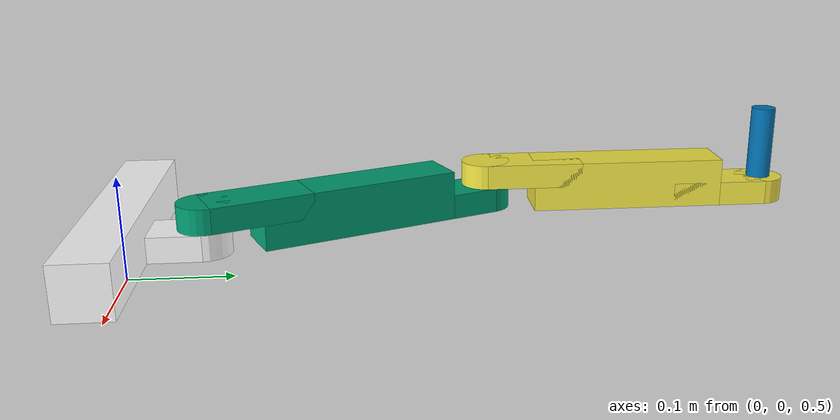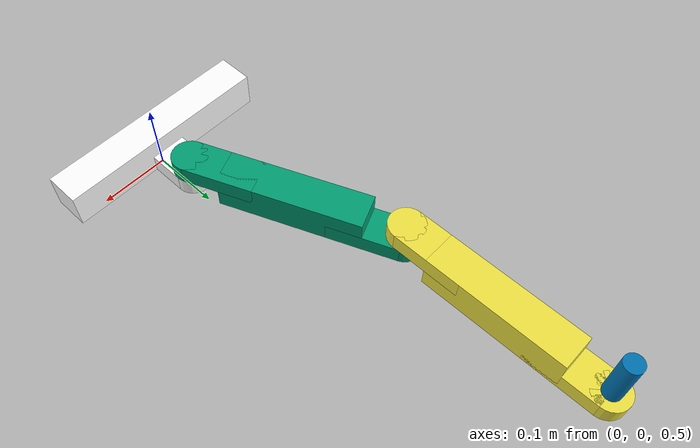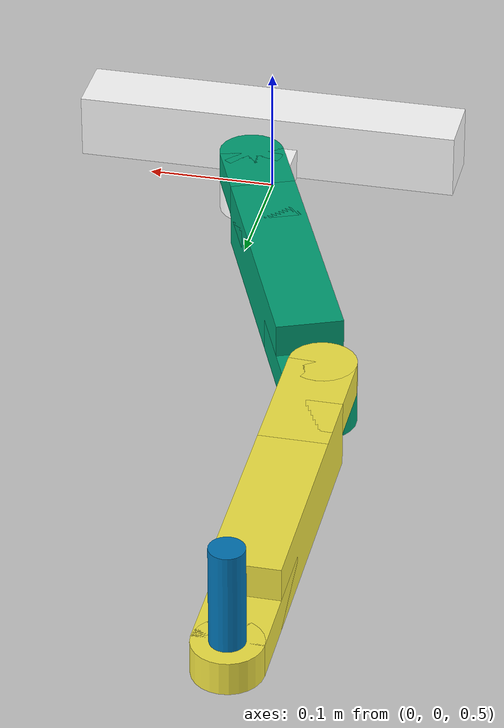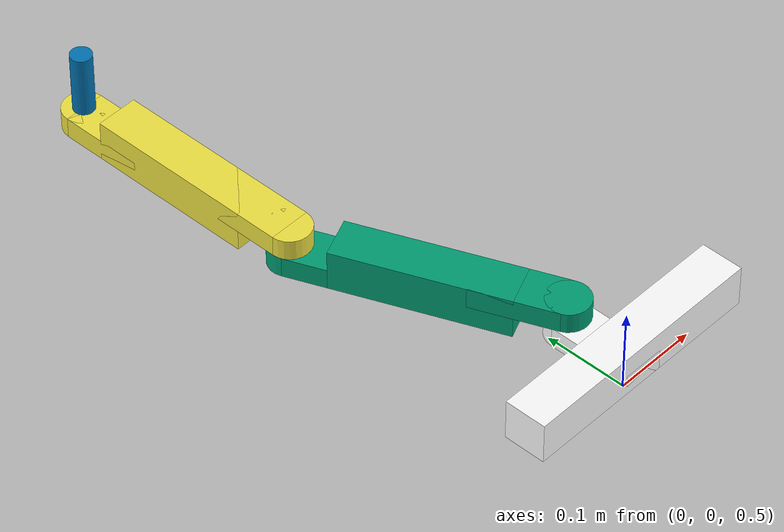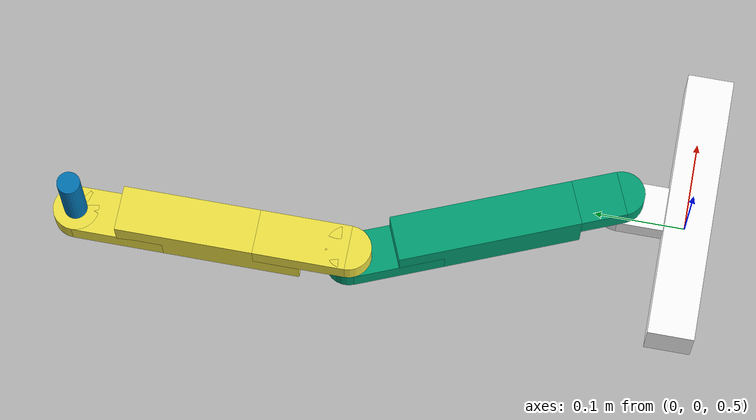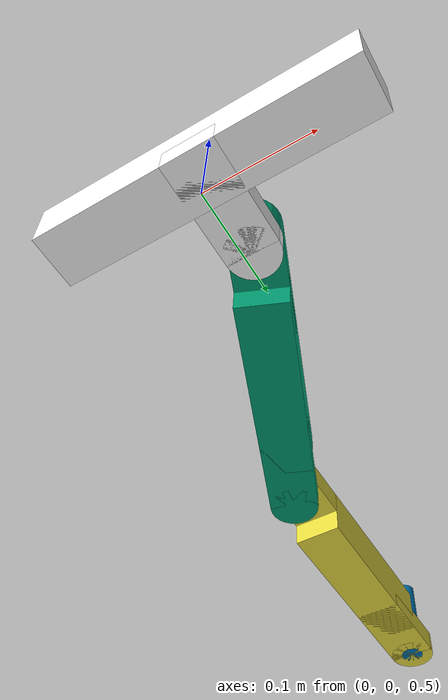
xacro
<?xml version="1.0"?>
<robot xmlns:xacro="http://www.ros.org/wiki/xacro" name="2r_manipulator_scaled_down">
  <!-- |    Author: Yeshasvi Tirupachuri                                                 | -->
  <!-- |    Date: 22 JULY 2016                                                           | -->
  <!-- |    Email: Yeshasvi.Tirupachuri@iit.it                                           | -->
  <!-- |    Institute: RBCS Department, Italian Institute of Technology, Genova          | -->
  <!-- |    Description: Xacro file for 2R Manipulator                                   | -->
  <!-- |    for URDF: rosrun xacro xacro model.xacro > model.urdf                        | -->
  <!-- |    for SDF: gz sdf -p model.urdf > model.sdf                                    | -->

<!--XACRO: Axis Rotation - 180 Degree/ Pi Radians-->
<xacro:property name="angle" value="3.14"/>

<!--XACRO: Small Rectangle-->
<xacro:property name="length_small_box" value="0.05"/>
<xacro:property name="width_small_box" value="${length_small_box*2}"/>
<xacro:property name="height_small_box" value="${length_small_box/2}"/>

<!--XACRO: Small Cylinder-->
<xacro:property name="length_small_cylinder" value="${height_small_box}"/>
<xacro:property name="radius_small_cylinder" value="${length_small_box/2}"/>

<!--XACRO: Base Rectangle-->
<xacro:property name="length_base_box" value="0.3"/>
<xacro:property name="width_base_box" value="0.05"/>
<xacro:property name="height_base_box" value="0.05"/>

<!--XACRO: First Link Rectangle-->
<xacro:property name="length_link1_box" value="0.05"/>
<xacro:property name="width_link1_box" value="0.2"/>
<xacro:property name="height_link1_box" value="0.05"/>

<!--XACRO: Second Link Rectangle-->
<xacro:property name="length_link2_box" value="0.05"/>
<xacro:property name="width_link2_box" value="0.2"/>
<xacro:property name="height_link2_box" value="0.05"/>

<!--XACRO: Handle Link Cylinder-->
<xacro:property name="length_handle_cylinder" value="${height_small_box*4}"/>
<xacro:property name="radius_handle_cylinder" value="${length_small_box/4}"/>

<!--XACRO: Link Masses-->
<xacro:property name="base_link_mass" value="1"/>
<xacro:property name="first_link_mass" value="1"/>
<xacro:property name="second_link_mass" value="1"/>
<xacro:property name="handle_link_mass" value="1"/>

<!--XACRO: Link Inertia Value-->
<xacro:property name="base_link_inertia_xx" value="1"/>
<xacro:property name="base_link_inertia_yy" value="1"/>
<xacro:property name="base_link_inertia_zz" value="1"/>

<xacro:property name="first_link_inertia_xx" value="1"/>
<xacro:property name="first_link_inertia_yy" value="1"/>
<xacro:property name="first_link_inertia_zz" value="1"/>

<xacro:property name="second_link_inertia_xx" value="1"/>
<xacro:property name="second_link_inertia_yy" value="1"/>
<xacro:property name="second_link_inertia_zz" value="1"/>

<xacro:property name="handle_link_inertia_xx" value="1"/>
<xacro:property name="handle_link_inertia_yy" value="1"/>
<xacro:property name="handle_link_inertia_zz" value="1"/>

<link name="world" />

<!--Base Link is at the Origin-->
<link name="base_link">

  <inertial>
    <origin xyz="0 0 0" rpy="0 0 0"/>
    <mass value="${base_link_mass}" />
    <inertia ixx="${base_link_inertia_xx}" iyy="${base_link_inertia_yy}" izz="${base_link_inertia_zz}" ixy="0" ixz="0" iyz="0" />
  </inertial>

<!--Base Link Box-->
  <visual>
    <origin xyz="0 0 0" rpy="0 0 0"/>
    <geometry>
      <box size="${length_base_box} ${width_base_box} ${height_base_box}"/>
    </geometry>
    <material name="white">
      <color rgba="1.0 1.0 1.0 1.0"/>
    </material>
  </visual>

  <collision>
    <origin rpy="0 0 0" xyz="0 0 0"/>
    <geometry>
      <box size="${length_base_box} ${width_base_box} ${height_base_box}"/>
    </geometry>
  </collision>

<!--Base Link Small Box-->
  <visual>
    <origin xyz="0 ${width_base_box/2} -${height_base_box/4}" rpy="0 0 0"/>
    <geometry>
      <box size="${length_small_box} ${width_small_box} ${height_small_box}"/>
    </geometry>
    <material name="white">
      <color rgba="1.0 1.0 1.0 1.0"/>
    </material>
  </visual>

  <collision>
    <origin xyz="0 ${width_base_box/2} -${height_base_box/4}" rpy="0 0 0"/>
    <geometry>
      <box size="${length_small_box} ${width_small_box} ${height_small_box}"/>
    </geometry>
  </collision>

<!--Base Link Small Cylinder-->
  <visual>
    <origin xyz="0 ${width_small_box*(3/4)} -${height_base_box/4}" rpy="0 0 0"/>
    <geometry>
      <cylinder length="${length_small_cylinder}" radius="${radius_small_cylinder}"/>
    </geometry>
    <material name="white">
      <color rgba="1.0 1.0 1.0 1.0"/>
    </material>
  </visual>

  <collision>
    <origin xyz="0 ${width_small_box*(3/4)} -${height_base_box/4}" rpy="0 0 0"/>
    <geometry>
      <cylinder length="${length_small_cylinder}" radius="${radius_small_cylinder}"/>
    </geometry>
  </collision>

</link>

<!--First Link-->
<link name="first_link">

  <inertial>
    <origin xyz="0 ${radius_small_cylinder*3/2+length_small_box*3/2+length_link1_box/2} 0" rpy="0 0 0"/>
    <mass value="${first_link_mass}" />
    <inertia ixx="${first_link_inertia_xx}" iyy="${first_link_inertia_yy}" izz="${first_link_inertia_zz}" ixy="0" ixz="0" iyz="0" />
  </inertial>

<!--First Link Small Cylinder - Front -->
  <visual>
    <origin xyz="0 0 ${height_base_box/4}" rpy="0 0 0"/>
    <geometry>
      <cylinder length="${length_small_cylinder}" radius="${radius_small_cylinder}"/>
      <material name="white">
        <color rgba="1.0 1.0 1.0 1.0"/>
      </material>
    </geometry>
  </visual>

  <collision>
    <origin xyz="0 0 ${height_base_box/4}" rpy="0 0 0"/>
    <geometry>
      <cylinder length="${length_small_cylinder}" radius="${radius_small_cylinder}"/>
    </geometry>
  </collision>

<!--First Link Small Box - Front -->
  <visual>
    <origin xyz="0 ${radius_small_cylinder*2} ${height_base_box/4}" rpy="0 0 0"/>
    <geometry>
      <box size="${length_small_box} ${width_small_box} ${height_small_box}"/>
      <material name="white">
        <color rgba="1.0 1.0 1.0 1.0"/>
      </material>
    </geometry>
  </visual>

  <collision>
    <origin xyz="0 ${radius_small_cylinder*2} ${height_base_box/4}" rpy="0 0 0"/>
    <geometry>
      <box size="${length_small_box} ${width_small_box} ${height_small_box}"/>
    </geometry>
  </collision>

<!--First Link Box-->
  <visual>
    <origin xyz="0 ${radius_small_cylinder*6} 0" rpy="0 0 0"/>
    <geometry>
      <box size="${length_link1_box} ${width_link1_box} ${height_link1_box}"/>
      <material name="white">
        <color rgba="1.0 1.0 1.0 1.0"/>
      </material>
    </geometry>
  </visual>

  <collision>
    <origin xyz="0 ${radius_small_cylinder*6} 0" rpy="0 0 0"/>
    <geometry>
      <box size="${length_link1_box} ${width_link1_box} ${height_link1_box}"/>
    </geometry>
  </collision>

<!--First Link Small Box - Back -->
  <visual>
    <origin xyz="0 ${radius_small_cylinder*2+width_link1_box} -${height_base_box/4}" rpy="0 0 0"/>
    <geometry>
      <box size="${length_small_box} ${width_small_box} ${height_small_box}"/>
      <material name="white">
        <color rgba="1.0 1.0 1.0 1.0"/>
      </material>
    </geometry>
  </visual>

  <collision>
    <origin xyz="0 ${radius_small_cylinder*2+width_link1_box} -${height_base_box/4}" rpy="0 0 0"/>
    <geometry>
      <box size="${length_small_box} ${width_small_box} ${height_small_box}"/>
    </geometry>
  </collision>

<!--First Link Small Cylinder - Back -->
  <visual>
    <origin xyz="0 ${radius_small_cylinder*4+width_link1_box} -${height_base_box/4}" rpy="0 0 0"/>
    <geometry>
      <cylinder length="${length_small_cylinder}" radius="${radius_small_cylinder}"/>
      <material name="white">
        <color rgba="1.0 1.0 1.0 1.0"/>
      </material>
    </geometry>
  </visual>

  <collision>
    <origin xyz="0 ${radius_small_cylinder*4+width_link1_box} -${height_base_box/4}" rpy="0 0 0"/>
    <geometry>
      <cylinder length="${length_small_cylinder}" radius="${radius_small_cylinder}"/>
    </geometry>
  </collision>

</link>

<!--Second Link -->
<link name="second_link">

  <inertial>
    <origin xyz="0 ${radius_small_cylinder*3/2+length_small_box*3/2+length_link1_box/2} 0" rpy="0 0 0"/>
    <mass value="${second_link_mass}" />
    <inertia ixx="${second_link_inertia_xx}" iyy="${second_link_inertia_yy}" izz="${second_link_inertia_zz}" ixy="0" ixz="0" iyz="0" />
  </inertial>

<!--Second Link Small Cylinder - Front -->
  <visual>
    <origin xyz="0 0 ${height_base_box/4}" rpy="0 0 0"/>
    <geometry>
      <cylinder length="${length_small_cylinder}" radius="${radius_small_cylinder}"/>
      <material name="white">
        <color rgba="1.0 1.0 1.0 1.0"/>
      </material>
    </geometry>
  </visual>

  <collision>
    <origin xyz="0 0 ${height_base_box/4}" rpy="0 0 0"/>
    <geometry>
      <cylinder length="${length_small_cylinder}" radius="${radius_small_cylinder}"/>
    </geometry>
  </collision>

<!--Second Link Small Box - Front -->
  <visual>
    <origin xyz="0 ${radius_small_cylinder*2} ${height_base_box/4}" rpy="0 0 0"/>
    <geometry>
      <box size="${length_small_box} ${width_small_box} ${height_small_box}"/>
      <material name="white">
        <color rgba="1.0 1.0 1.0 1.0"/>
      </material>
    </geometry>
  </visual>

  <collision>
    <origin xyz="0 ${radius_small_cylinder*2} ${height_base_box/4}" rpy="0 0 0"/>
    <geometry>
      <box size="${length_small_box} ${width_small_box} ${height_small_box}"/>
    </geometry>
  </collision>

<!--Second Link Box-->
  <visual>
    <origin xyz="0 ${radius_small_cylinder*6} 0" rpy="0 0 0"/>
    <geometry>
      <box size="${length_link2_box} ${width_link2_box} ${height_link2_box}"/>
      <material name="white">
        <color rgba="1.0 1.0 1.0 1.0"/>
      </material>
    </geometry>
  </visual>

  <collision>
    <origin xyz="0 ${radius_small_cylinder*6} 0" rpy="0 0 0"/>
    <geometry>
      <box size="${length_link2_box} ${width_link2_box} ${height_link2_box}"/>
    </geometry>
  </collision>

<!--Second Link Small Box - Back -->
  <visual>
    <origin xyz="0 ${radius_small_cylinder*2+width_link2_box} -${height_base_box/4}" rpy="0 0 0"/>
    <geometry>
      <box size="${length_small_box} ${width_small_box} ${height_small_box}"/>
      <material name="white">
        <color rgba="1.0 1.0 1.0 1.0"/>
      </material>
    </geometry>
  </visual>

  <collision>
    <origin xyz="0 ${radius_small_cylinder*2+width_link2_box} -${height_base_box/4}" rpy="0 0 0"/>
    <geometry>
      <box size="${length_small_box} ${width_small_box} ${height_small_box}"/>
    </geometry>
  </collision>

<!--Second Link Small Cylinder - Back -->
  <visual>
    <origin xyz="0 ${radius_small_cylinder*4+width_link2_box} -${height_base_box/4}" rpy="0 0 0"/>
    <geometry>
      <cylinder length="${length_small_cylinder}" radius="${radius_small_cylinder}"/>
      <material name="white">
        <color rgba="1.0 1.0 1.0 1.0"/>
      </material>
    </geometry>
  </visual>

  <collision>
    <origin xyz="0 ${radius_small_cylinder*4+width_link2_box} -${height_base_box/4}" rpy="0 0 0"/>
    <geometry>
      <cylinder length="${length_small_cylinder}" radius="${radius_small_cylinder}"/>
    </geometry>
  </collision>

</link>

<!--Handle Link-->
<link name="handle_link">

  <inertial>
    <origin xyz="0 0 ${height_base_box/4}" rpy="0 0 0"/>
    <mass value="${handle_link_mass}"/>
    <inertia ixx="${handle_link_inertia_xx}" iyy="${handle_link_inertia_yy}" izz="${handle_link_inertia_zz}" ixy="0" ixz="0" iyz="0" />
  </inertial>

  <visual>
    <origin xyz="0 0 ${height_base_box/2}" rpy="0 0 0"/>
    <geometry>
      <cylinder length="${length_handle_cylinder}" radius="${radius_handle_cylinder}"/>
      <material name="white">
        <color rgba="1.0 1.0 1.0 1.0"/>
      </material>
    </geometry>
  </visual>

  <collision>
    <origin xyz="0 0 ${height_base_box/2}" rpy="0 0 0"/>
    <geometry>
      <cylinder length="${length_handle_cylinder}" radius="${radius_handle_cylinder}"/>
    </geometry>
  </collision>

</link>

<!--Joints-->
<joint name="anchor" type="fixed">
  <parent link="world"/>
  <child link="base_link"/>
  <origin xyz="0 0 0.55" rpy="0 0 0" />
  <axis xyz="0 0 0" />
</joint>

<joint name="first_joint" type="revolute">
  <parent link="base_link"/>
  <child link="first_link"/>
  <origin xyz="0 ${width_small_box*(3/4)} 0" rpy="0 0 ${angle/8}" />
  <axis xyz="0 0 1" />
  <calibration rising="1"/>
  <dynamic damping="0.0" friction="0.0"/>
  <limit effort="30" lower="-${angle/4}" upper="0" velocity="1.0"/>
  <safety_controller k_velocity="10" k_position="15" soft_lower_limit="-1.5" soft_upper_limit="1.5"/>
</joint>

<joint name="second_joint" type="revolute">
  <parent link="first_link"/>
  <child link="second_link"/>
  <origin xyz="0 ${width_small_box+width_link1_box} 0" rpy="0 0 -${angle/8}" />
  <axis xyz="0 0 1" />
  <calibration rising="1"/>
  <dynamic damping="0.0" friction="0.0"/>
  <limit effort="30" lower="-${angle/8}" upper="${angle/8}" velocity="1.0"/>
  <safety_controller k_velocity="10" k_position="15" soft_lower_limit="-1.5" soft_upper_limit="1.5"/>
</joint>

<joint name="handle_joint" type="revolute">
  <parent link="second_link"/>
  <child link="handle_link"/>
  <origin xyz="0 ${width_small_box+width_link2_box} 0" rpy="0 0 0" />
  <axis xyz="0 0 1" />
  <calibration rising="1"/>
  <dynamic damping="0.0" friction="0.0"/>
  <limit effort="30" lower="-${angle}" upper="${angle}" velocity="1.0"/>
  <safety_controller k_velocity="10" k_position="15" soft_lower_limit="-1.5" soft_upper_limit="1.5"/>

</joint>

<!--Gazebo Yarp Plugin-->

</robot>
